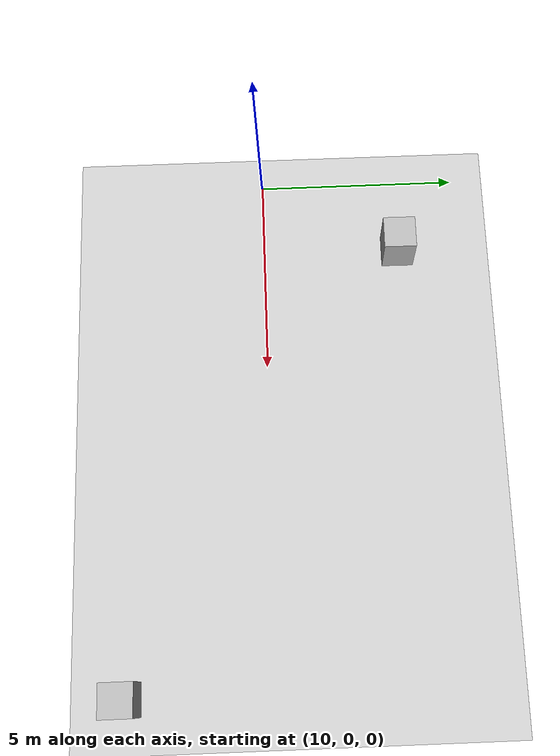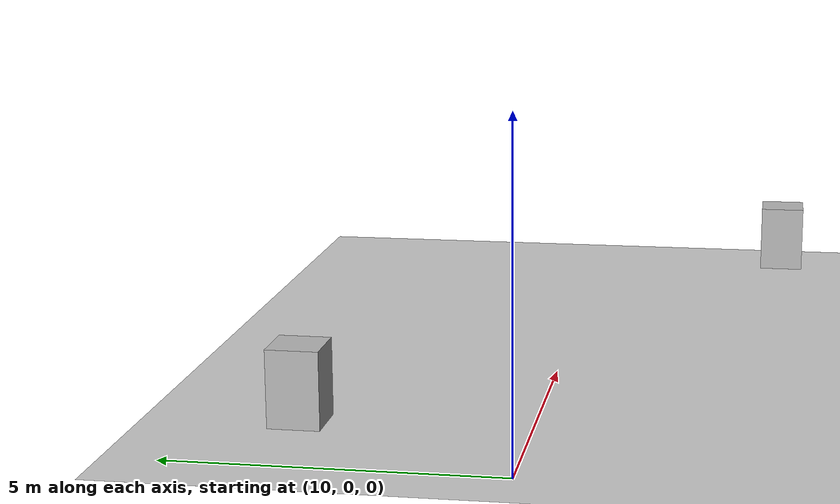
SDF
<?xml version="1.0"?>
<sdf version="1.6">
  <world name="v2-04g-r2-cruise-s4951">
    <gravity>0 0 -9.81</gravity>
    <physics name="v2_deterministic" type="ode">
      <max_step_size>0.002</max_step_size>
      <real_time_update_rate>500</real_time_update_rate>
    </physics>
    <include>
      <uri>model://sun</uri>
    </include>
    <include>
      <uri>model://ground_plane</uri>
    </include>
    <model name="cruise-left">
      <static>true</static>
      <pose>11.941388575 3.460528677 0.600000000 0 0 -0.005743253</pose>
      <link name="link">
        <collision name="collision">
          <geometry>
            <box>
              <size>0.800000 0.800000 1.200000</size>
            </box>
          </geometry>
        </collision>
        <visual name="visual">
          <geometry>
            <box>
              <size>0.800000 0.800000 1.200000</size>
            </box>
          </geometry>
        </visual>
      </link>
    </model>
    <model name="cruise-right">
      <static>true</static>
      <pose>23.008984740 -3.558044980 0.600000000 0 0 0.001868628</pose>
      <link name="link">
        <collision name="collision">
          <geometry>
            <box>
              <size>0.800000 0.800000 1.200000</size>
            </box>
          </geometry>
        </collision>
        <visual name="visual">
          <geometry>
            <box>
              <size>0.800000 0.800000 1.200000</size>
            </box>
          </geometry>
        </visual>
      </link>
    </model>
  </world>
</sdf>
